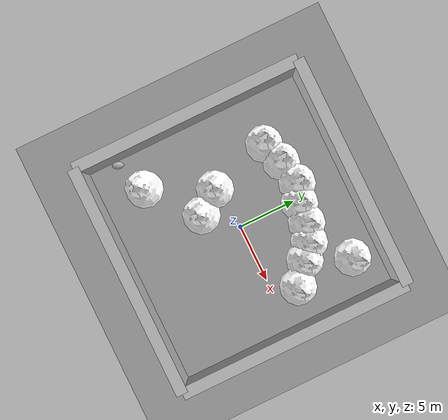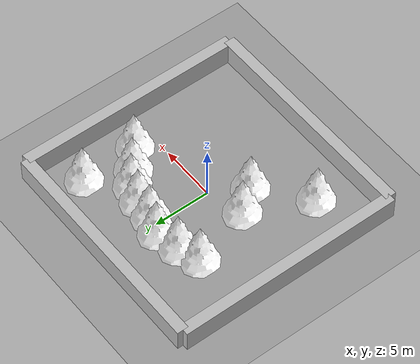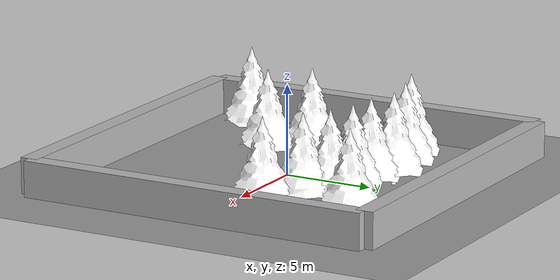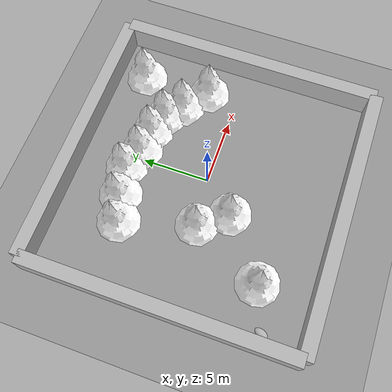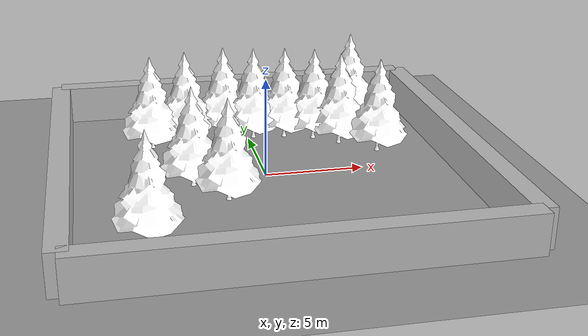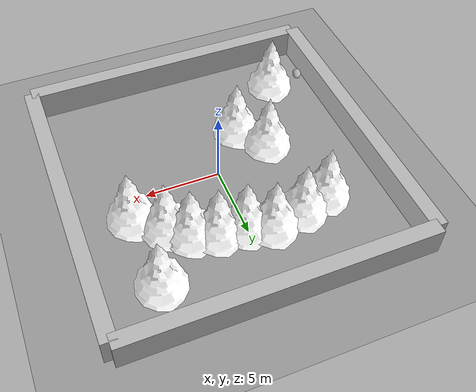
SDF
<sdf version="1.9">
 <world name="enclosed_forest">
  <plugin filename="gz-sim-physics-system" name="gz::sim::systems::Physics"/>
  <plugin filename="gz-sim-user-commands-system" name="gz::sim::systems::UserCommands"/>
  <plugin filename="gz-sim-scene-broadcaster-system" name="gz::sim::systems::SceneBroadcaster"/>
  <plugin filename="gz-sim-sensors-system" name="gz::sim::systems::Sensors">
   <render_engine>ogre2</render_engine>
  </plugin>
  <plugin filename="gz-sim-contact-system" name="gz::sim::systems::Contact"/>
  <gravity>0 0 -9.81</gravity>
  <magnetic_field>6e-06 2.3e-05 -4.2e-05</magnetic_field>
  <atmosphere type="adiabatic"/>
  <physics type="ode">
   <max_step_size>0.001</max_step_size>
   <real_time_factor>1</real_time_factor>
   <real_time_update_rate>1000</real_time_update_rate>
  </physics>
  <scene><ambient>0.4 0.4 0.4 1</ambient><background>0.7 0.7 0.7 1</background><shadows>true</shadows></scene>
  <model name="ground_plane">
   <static>true</static>
   <link name="link">
    <collision name="col">
     <geometry><plane><normal>0 0 1</normal><size>100 100</size></plane></geometry>
     <surface><friction><ode><mu>1</mu><mu2>1</mu2></ode></friction></surface>
    </collision>
    <visual name="vis">
     <geometry><plane><normal>0 0 1</normal><size>100 100</size></plane></geometry>
     <material><ambient>0.6 0.6 0.6 1</ambient><diffuse>0.6 0.6 0.6 1</diffuse></material>
    </visual>
    <inertial>
     <mass>1</mass>
     <inertia><ixx>1</ixx><ixy>0</ixy><ixz>0</ixz><iyy>1</iyy><iyz>0</iyz><izz>1</izz></inertia>
    </inertial>
   </link>
  </model>
  <model name="wall_north">
   <static>true</static>
   <pose>0 10 1 0 -0 0</pose>
   <link name="l">
    <collision name="c"><geometry><box><size>20 1 2</size></box></geometry></collision>
    <visual name="v"><geometry><box><size>20 1 2</size></box></geometry></visual>
    <inertial>
     <mass>1</mass>
     <inertia><ixx>1</ixx><ixy>0</ixy><ixz>0</ixz><iyy>1</iyy><iyz>0</iyz><izz>1</izz></inertia>
    </inertial>
   </link>
  </model>
  <model name="wall_south">
   <static>true</static>
   <pose>0 -10 1 0 -0 0</pose>
   <link name="l">
    <collision name="c"><geometry><box><size>20 1 2</size></box></geometry></collision>
    <visual name="v"><geometry><box><size>20 1 2</size></box></geometry></visual>
    <inertial>
     <mass>1</mass>
     <inertia><ixx>1</ixx><ixy>0</ixy><ixz>0</ixz><iyy>1</iyy><iyz>0</iyz><izz>1</izz></inertia>
    </inertial>
   </link>
  </model>
  <model name="wall_east">
   <static>true</static>
   <pose>10 0 1 0 -0 0</pose>
   <link name="l">
    <collision name="c"><geometry><box><size>1 20 2</size></box></geometry></collision>
    <visual name="v"><geometry><box><size>1 20 2</size></box></geometry></visual>
    <inertial>
     <mass>1</mass>
     <inertia><ixx>1</ixx><ixy>0</ixy><ixz>0</ixz><iyy>1</iyy><iyz>0</iyz><izz>1</izz></inertia>
    </inertial>
   </link>
  </model>
  <model name="wall_west">
   <static>true</static>
   <pose>-10 0 1 0 -0 0</pose>
   <link name="l">
    <collision name="c"><geometry><box><size>1 20 2</size></box></geometry></collision>
    <visual name="v"><geometry><box><size>1 20 2</size></box></geometry></visual>
    <inertial>
     <mass>1</mass>
     <inertia><ixx>1</ixx><ixy>0</ixy><ixz>0</ixz><iyy>1</iyy><iyz>0</iyz><izz>1</izz></inertia>
    </inertial>
   </link>
  </model>
  <include>
   <uri>file://./src/scout_controller/models/pine_tree</uri>
   <name>Pine Tree</name>
   <pose>6.47842 2.145 0 0 -0 0</pose>
  </include>
  <include>
   <uri>file://./src/scout_controller/models/pine_tree</uri>
   <name>Pine Tree_0</name>
   <pose>4.75138 3.59106 0 0 -0 0</pose>
  </include>
  <include>
   <uri>file://./src/scout_controller/models/pine_tree</uri>
   <name>Pine Tree_1</name>
   <pose>3.54338 4.568 0 0 -0 0</pose>
  </include>
  <include>
   <uri>file://./src/scout_controller/models/pine_tree</uri>
   <name>Pine Tree_2</name>
   <pose>2.02014 5.07597 0 0 -0 0</pose>
  </include>
  <include>
   <uri>file://./src/scout_controller/models/pine_tree</uri>
   <name>Pine Tree_3</name>
   <pose>6.28386 7.19477 0 0 -0 0</pose>
  </include>
  <include>
   <uri>file://./src/scout_controller/models/pine_tree</uri>
   <name>Pine Tree_4</name>
   <pose>-5.26018 4.74171 0 0 -0 0</pose>
  </include>
  <include>
   <uri>file://./src/scout_controller/models/pine_tree</uri>
   <name>Pine Tree_5</name>
   <pose>-2.24389 -2.46283 0 0 -0 0</pose>
  </include>
  <include>
   <uri>file://./src/scout_controller/models/pine_tree</uri>
   <name>Pine Tree_6</name>
   <pose>-3.69809 -0.523003 0 0 -0 0</pose>
  </include>
  <include>
   <uri>file://./src/scout_controller/models/pine_tree</uri>
   <name>Pine Tree_7</name>
   <pose>-6.23744 -5.75171 0 0 -0 0</pose>
  </include>
  <include>
   <uri>file://./src/scout_controller/models/pine_tree</uri>
   <name>Pine Tree_8</name>
   <pose>0.3243 5.2495 0 0 -0 0</pose>
  </include>
  <include>
   <uri>file://./src/scout_controller/models/pine_tree</uri>
   <name>Pine Tree_9</name>
   <pose>-1.2492 5.7859 0 0 -0 0</pose>
  </include>
  <include>
   <uri>file://./src/scout_controller/models/pine_tree</uri>
   <name>Pine Tree_10</name>
   <pose>-3.37646 5.36595 0 0 -0 0</pose>
  </include>
  <model name="ellipsoid">
   <pose>-9.1236 -6.98203 0.186668 1.5708 -1.37749 -0.350892</pose>
   <link name="ellipsoid_link">
    <inertial>
     <inertia>
      <ixx>0.068000000000000005</ixx>
      <ixy>0</ixy>
      <ixz>0</ixz>
      <iyy>0.058000000000000003</iyy>
      <iyz>0</iyz>
      <izz>0.025999999999999999</izz>
     </inertia>
     <mass>1</mass>
    </inertial>
    <collision name="ellipsoid_collision">
     <geometry><ellipsoid><radii>0.2 0.3 0.5</radii></ellipsoid></geometry>
    </collision>
    <visual name="ellipsoid_visual">
     <geometry><ellipsoid><radii>0.2 0.3 0.5</radii></ellipsoid></geometry>
     <material>
      <ambient>0.3 0.3 0.3 1</ambient>
      <diffuse>0.7 0.7 0.7 1</diffuse>
      <specular>1 1 1 1</specular>
     </material>
    </visual>
   </link>
   <static>false</static>
  </model>
  <light name="sun" type="directional">
   <pose>0 0 10 0 -0 0</pose>
   <intensity>1</intensity>
   <direction>-0.5 0.2 -1</direction>
   <diffuse>1 1 1 1</diffuse>
   <specular>0.1 0.1 0.1 1</specular>
   <attenuation><range>10</range><linear>1</linear><constant>1</constant><quadratic>0</quadratic></attenuation>
   <spot><inner_angle>0</inner_angle><outer_angle>0</outer_angle><falloff>0</falloff></spot>
  </light>
 </world>
</sdf>

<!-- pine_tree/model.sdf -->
<sdf version="1.7">
  <model name="Pine Tree">
    <static>true</static>
    <link name="link">
      <collision name="collision">
        <geometry>
          <mesh>
            <uri>./meshes/pine_tree.dae</uri>
          </mesh>
        </geometry>
      </collision>
      <visual name="branch">
        <geometry>
          <mesh>
            <uri>./meshes/pine_tree.dae</uri>
            <submesh>
              <name>Branch</name>
            </submesh>
          </mesh>
        </geometry>
        <material>
          <double_sided>true</double_sided>
          <diffuse>1.0 1.0 1.0</diffuse>
          <script>
            <uri>./materials/scripts/</uri>
            <uri>./materials/textures/</uri>
            <name>PineTree/Branch</name>
          </script>

          <pbr>
            <metal>
              <albedo_map>./materials/textures/branch_2_diffuse.png</albedo_map>
            </metal>
          </pbr>
        </material>
      </visual>
      <visual name="bark">
        <geometry>
          <mesh>
            <uri>./meshes/pine_tree.dae</uri>
            <submesh>
              <name>Bark</name>
            </submesh>
          </mesh>
        </geometry>
        <material>
          <diffuse>1.0 1.0 1.0</diffuse>
          <script>
            <uri>./materials/scripts/</uri>
            <uri>./materials/textures/</uri>
            <name>PineTree/Bark</name>
          </script>

          <pbr>
            <metal>
              <albedo_map>./materials/textures/bark_diffuse.png</albedo_map>
            </metal>
          </pbr>
        </material>
      </visual>
    </link>
  </model>
</sdf>
